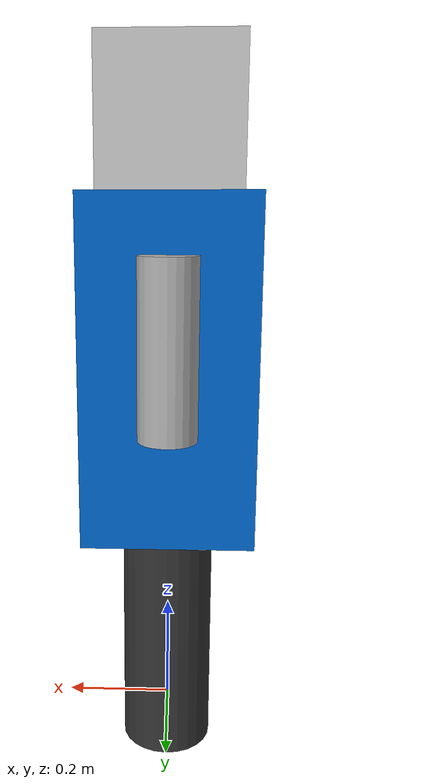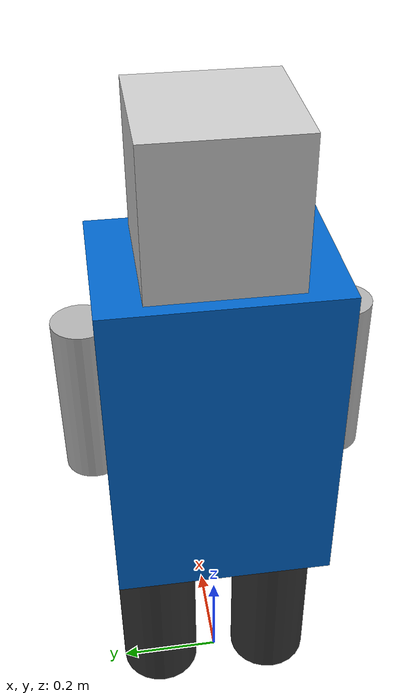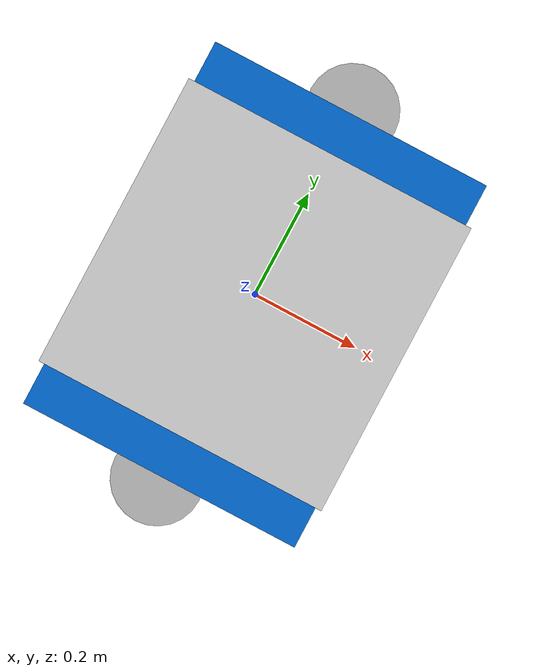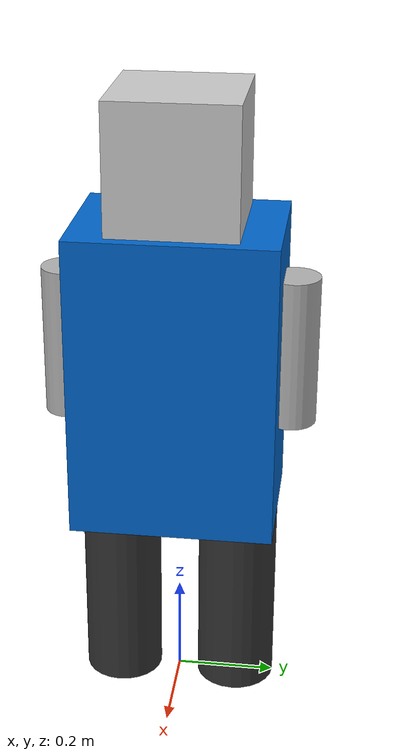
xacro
<?xml version="1.0"?>
<robot name="fydelisbot_humanoid" xmlns:xacro="http://www.ros.org/wiki/xacro">

  <!-- ===================== Propriedades ===================== -->
  <xacro:property name="torso_x" value="0.30"/>
  <xacro:property name="torso_y" value="0.40"/>
  <xacro:property name="torso_z" value="0.60"/>
  <xacro:property name="torso_size" value="${torso_x} ${torso_y} ${torso_z}"/>
  <xacro:property name="torso_mass" value="20.0"/>
  <xacro:property name="head_size" value="0.25"/>
  <xacro:property name="head_mass" value="3.0"/>
  <xacro:property name="leg_len" value="0.40"/>
  <xacro:property name="leg_r" value="0.08"/>
  <xacro:property name="leg_mass" value="5.0"/>
  <xacro:property name="arm_len" value="0.30"/>
  <xacro:property name="arm_r" value="0.05"/>
  <xacro:property name="arm_mass" value="2.0"/>
  <xacro:property name="shoulder_y" value="0.22"/>
  <xacro:property name="hip_y" value="0.12"/>
  <xacro:property name="base_torso_z" value="0.70"/>
  <xacro:property name="PI" value="3.141592653589793"/>

  <!-- ===================== Inércias ===================== -->
  <xacro:macro name="box_inertia" params="m x y z">
    <inertial>
      <mass value="${m}"/>
      <origin xyz="0 0 0" rpy="0 0 0"/>
      <inertia ixx="${m*(y*y+z*z)/12.0}" ixy="0.0" ixz="0.0"
               iyy="${m*(x*x+z*z)/12.0}" iyz="0.0"
               izz="${m*(x*x+y*y)/12.0}"/>
    </inertial>
  </xacro:macro>

  <xacro:macro name="cyl_inertia" params="m r l">
    <inertial>
      <mass value="${m}"/>
      <origin xyz="0 0 0" rpy="0 0 0"/>
      <inertia ixx="${m*(3.0*r*r+l*l)/12.0}" ixy="0.0" ixz="0.0"
               iyy="${m*(3.0*r*r+l*l)/12.0}" iyz="0.0"
               izz="${m*r*r/2.0}"/>
    </inertial>
  </xacro:macro>

  <!-- ===================== Materiais ===================== -->
  <material name="blue">      <color rgba="0.00 0.40 0.80 1.0"/></material>
  <material name="dark_gray"> <color rgba="0.20 0.20 0.20 1.0"/></material>
  <material name="light_gray"><color rgba="0.80 0.80 0.80 1.0"/></material>
  <material name="metallic">  <color rgba="0.70 0.70 0.70 1.0"/></material>

  <!-- ===================== Cadeia Base ===================== -->
  <link name="base_footprint"/>

  <joint name="base_footprint_joint" type="fixed">
    <parent link="base_footprint"/>
    <child  link="base_link"/>
    <origin xyz="0 0 ${base_torso_z}" rpy="0 0 0"/>
  </joint>

  <link name="base_link"/>

  <joint name="base_torso_joint" type="fixed">
    <parent link="base_link"/>
    <child  link="torso_link"/>
    <origin xyz="0 0 0" rpy="0 0 0"/>
  </joint>

  <!-- ===================== Torso ===================== -->
  <link name="torso_link">
    <xacro:box_inertia m="${torso_mass}" x="${torso_x}" y="${torso_y}" z="${torso_z}"/>
    <visual>
      <origin xyz="0 0 0" rpy="0 0 0"/>
      <geometry><box size="${torso_size}"/></geometry>
      <material name="blue"/>
    </visual>
    <collision>
      <origin xyz="0 0 0" rpy="0 0 0"/>
      <geometry><box size="${torso_size}"/></geometry>
    </collision>
  </link>

  <!-- ===================== Cabeça ===================== -->
  <link name="head_link">
    <xacro:box_inertia m="${head_mass}" x="${head_size}" y="${head_size}" z="${head_size}"/>
    <visual>
      <origin xyz="0 0 ${head_size/2}" rpy="0 0 0"/>
      <geometry><box size="${head_size} ${head_size} ${head_size}"/></geometry>
      <material name="light_gray"/>
    </visual>
    <collision>
      <origin xyz="0 0 ${head_size/2}" rpy="0 0 0"/>
      <geometry><box size="${head_size} ${head_size} ${head_size}"/></geometry>
    </collision>
  </link>

  <joint name="neck_joint" type="revolute">
    <parent link="torso_link"/>
    <child  link="head_link"/>
    <origin xyz="0 0 ${torso_z/2}" rpy="0 0 0"/>
    <axis xyz="0 0 1"/>
    <limit lower="-1.57" upper="1.57" effort="10.0" velocity="1.0"/>
    <dynamics damping="0.3" friction="0.05"/>
  </joint>

  <!-- ===================== Membro Genérico ===================== -->
  <xacro:macro name="limb" params="prefix side y_off joint_z axis length radius mass material effort velocity lower upper">
    <link name="${prefix}_link">
      <xacro:cyl_inertia m="${mass}" r="${radius}" l="${length}"/>
      <visual>
        <origin xyz="0 0 ${-length/2}" rpy="0 0 0"/>
        <geometry><cylinder radius="${radius}" length="${length}"/></geometry>
        <material name="${material}"/>
      </visual>
      <collision>
        <origin xyz="0 0 ${-length/2}" rpy="0 0 0"/>
        <geometry><cylinder radius="${radius}" length="${length}"/></geometry>
      </collision>
    </link>

    <joint name="${prefix}_joint" type="revolute">
      <parent link="torso_link"/>
      <child  link="${prefix}_link"/>
      <origin xyz="0 ${y_off} ${joint_z}" rpy="0 0 0"/>
      <axis xyz="${axis}"/>
      <limit lower="${lower}" upper="${upper}" effort="${effort}" velocity="${velocity}"/>
      <dynamics damping="0.4" friction="0.08"/>
    </joint>
  </xacro:macro>

  <!-- ===================== Braços ===================== -->
  <xacro:limb prefix="left_shoulder"  side="left"  y_off="${+shoulder_y}" joint_z="0.20"
              axis="0 1 0" length="${arm_len}" radius="${arm_r}" mass="${arm_mass}"
              material="metallic" effort="20.0" velocity="2.0" lower="-3.14" upper="3.14"/>
  <xacro:limb prefix="right_shoulder" side="right" y_off="${-shoulder_y}" joint_z="0.20"
              axis="0 1 0" length="${arm_len}" radius="${arm_r}" mass="${arm_mass}"
              material="metallic" effort="20.0" velocity="2.0" lower="-3.14" upper="3.14"/>

  <!-- ===================== Pernas ===================== -->
  <xacro:limb prefix="left_hip"  side="left"  y_off="${+hip_y}" joint_z="${-torso_z/2}"
              axis="1 0 0" length="${leg_len}" radius="${leg_r}" mass="${leg_mass}"
              material="dark_gray" effort="50.0" velocity="2.0" lower="-1.57" upper="1.57"/>
  <xacro:limb prefix="right_hip" side="right" y_off="${-hip_y}" joint_z="${-torso_z/2}"
              axis="1 0 0" length="${leg_len}" radius="${leg_r}" mass="${leg_mass}"
              material="dark_gray" effort="50.0" velocity="2.0" lower="-1.57" upper="1.57"/>

  <!-- ===================== Gazebo ===================== -->
  <xacro:macro name="gazebo_params" params="link mu kp kv">
    <gazebo reference="${link}">
      <mu1>${mu}</mu1>
      <mu2>${mu}</mu2>
      <kp>${kp}</kp>
      <kv>${kv}</kv>
      <selfCollide>false</selfCollide>
    </gazebo>
  </xacro:macro>

  <xacro:gazebo_params link="left_hip_link"  mu="0.9" kp="1e6" kv="1.0"/>
  <xacro:gazebo_params link="right_hip_link" mu="0.9" kp="1e6" kv="1.0"/>

</robot>
